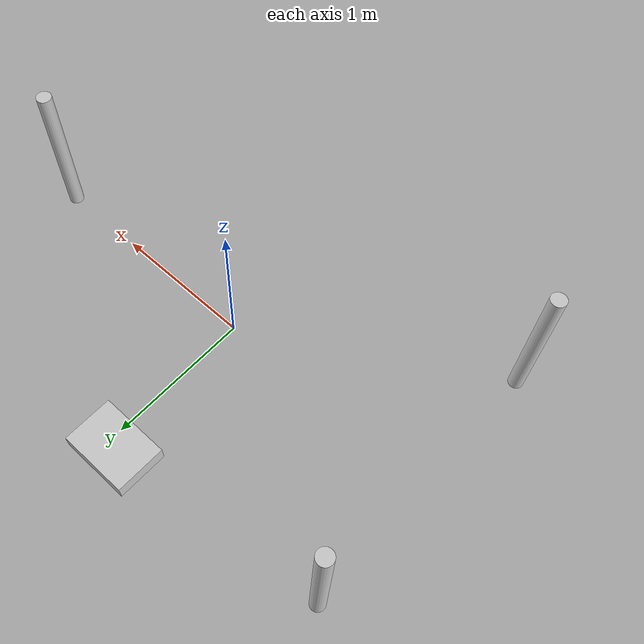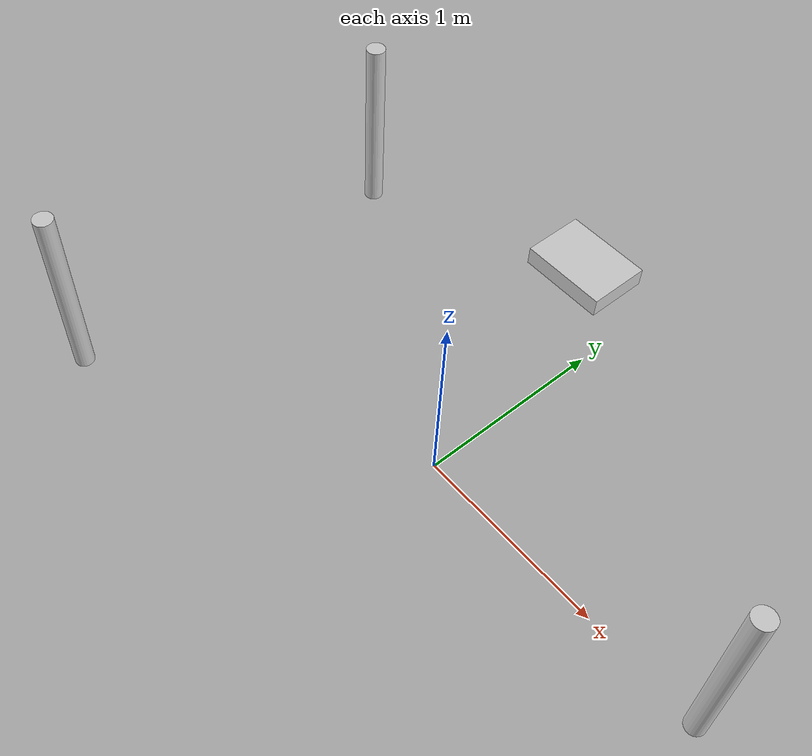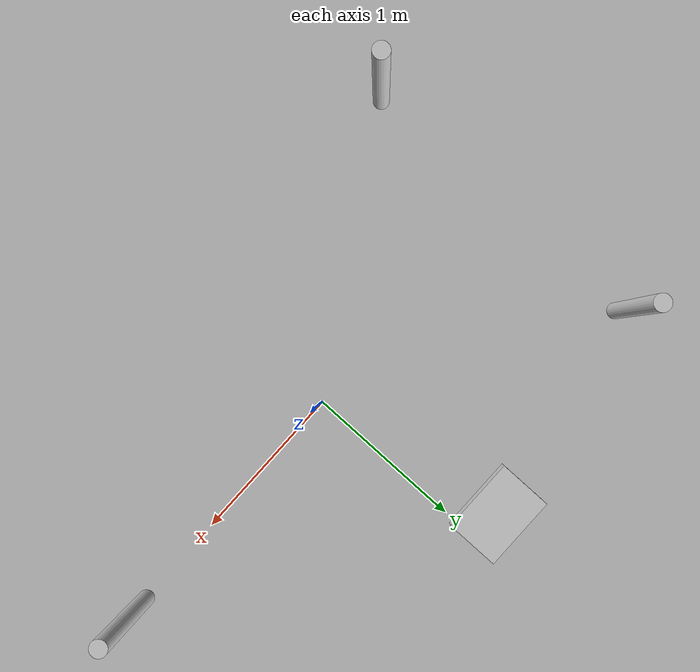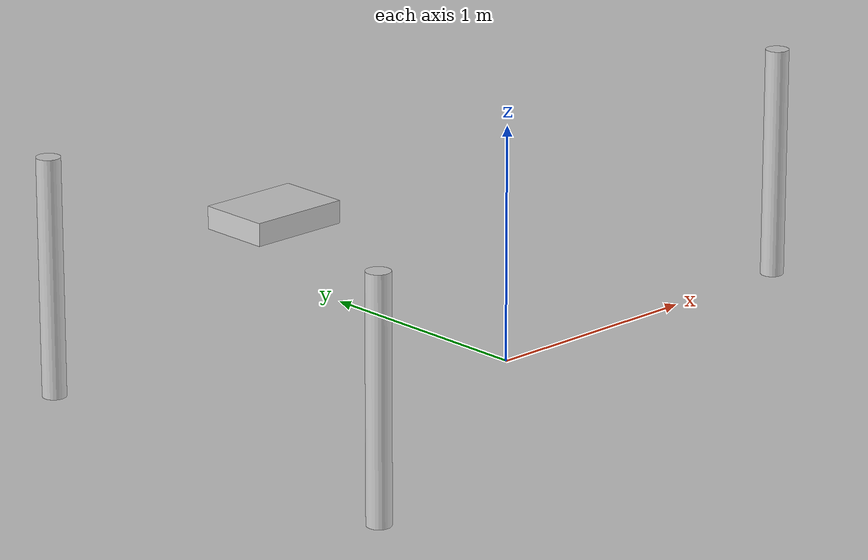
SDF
<sdf version="1.10">
 <world name="default">
  <gravity>0 0 -9.8000000000000007</gravity>
  <magnetic_field>6.0000000000000002e-06 2.3e-05 -4.1999999999999998e-05</magnetic_field>
  <atmosphere type="adiabatic"/>
  <physics type="ode">
   <max_step_size>0.004</max_step_size>
   <real_time_factor>1</real_time_factor>
   <real_time_update_rate>250</real_time_update_rate>
  </physics>
  <scene>
   <ambient>0.400000006 0.400000006 0.400000006 1</ambient>
   <background>0.699999988 0.699999988 0.699999988 1</background>
   <shadows>true</shadows>
  </scene>
  <audio><device>default</device></audio>
  <spherical_coordinates>
   <surface_model>EARTH_WGS84</surface_model>
   <latitude_deg>0</latitude_deg>
   <longitude_deg>0</longitude_deg>
   <elevation>0</elevation>
   <heading_deg>0</heading_deg>
  </spherical_coordinates>
  <plugin name="gz::sim::systems::Physics" filename="gz-sim-physics-system"/>
  <plugin name="gz::sim::systems::Sensors" filename="gz-sim-sensors-system">
   <render_engine>ogre2</render_engine>
  </plugin>
  <plugin name="gz::sim::systems::Imu" filename="gz-sim-imu-system"/>
  <plugin name="gz::sim::systems::UserCommands" filename="gz-sim-user-commands-system"/>
  <plugin name="gz::sim::systems::SceneBroadcaster" filename="gz-sim-scene-broadcaster-system"/>
  <include><uri>model://poteau</uri><name>Poteau1</name><pose>+1.594 0 0 0 0 0</pose></include>
  <include><uri>model://poteau</uri><name>Poteau2</name><pose>-1.594 -0.95 0 0 0 0</pose></include>
  <include><uri>model://poteau</uri><name>Poteau3</name><pose>-1.594 0.95 0 0 0 0</pose></include>
  <include><uri>model://boxboxbox</uri><name>THE_box</name><pose>-0.225 1.161 0 0 0 0</pose></include>
  <light name="sun" type="directional">
   <pose>0 0 10 0 0 0</pose>
   <intensity>1</intensity>
   <direction>-0.5 0.10000000000000001 -0.90000000000000002</direction>
   <diffuse>0.800000012 0.800000012 0.800000012 1</diffuse>
   <specular>0.200000003 0.200000003 0.200000003 1</specular>
   <attenuation>
    <range>1000</range>
    <linear>0.01</linear>
    <constant>0.90000000000000002</constant>
    <quadratic>0.001</quadratic>
   </attenuation>
   <spot><inner_angle>0</inner_angle><outer_angle>0</outer_angle><falloff>0</falloff></spot>
  </light>
 </world>
</sdf>

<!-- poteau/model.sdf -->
<sdf version='1.7'>
  <model name='Poteau'>
   	<static>true</static>
    <allow_auto_disable>true</allow_auto_disable>
    <plugin filename="gz-sim-label-system" name="gz::sim::systems::Label">
        <label>2</label>
    </plugin>
    <link name='link_0'>
			<gravity>0</gravity>
      <inertial>
        <pose>0 0 0.02 0 0 0</pose>
        <mass>0.025</mass>
        <inertia>
          <ixx>2.5e-5</ixx>
          <ixy>0</ixy>
          <ixz>0</ixz>
          <iyy>2.5e-5</iyy>
          <iyz>0</iyz>
          <izz>8e-6</izz>
        </inertia>
      </inertial>
      <pose>0 0 0.5 0 0 0</pose>
      <visual name='visual'>
        <pose>0 0 0 0 -0 0</pose>
        <geometry>
          <cylinder>
            <radius>0.05</radius>
            <length>1.0</length>
          </cylinder>
        </geometry>
        <material>
          <ambient>0.8 0.8 0.8 1</ambient>
          <diffuse>0.8 0.8 0.8 1</diffuse>
          <specular>0.1 0.1 0.1 1</specular>
          <emissive>0 0 0 1</emissive>
        </material>
        <transparency>0</transparency>
        <cast_shadows>1</cast_shadows>
      </visual>

      <collision name='collision'>
        <laser_retro>1</laser_retro>
        <max_contacts>5 </max_contacts>
        <pose>0 0 0.5 0 0 0</pose>
        <geometry>
          <cylinder>
            <radius>0.05</radius>
            <length>1.0</length>
          </cylinder>
        </geometry>
      </collision>
    </link>
    <pose>0 0 0 0 0 0</pose>

    <allow_auto_disable>1</allow_auto_disable>
  </model>
</sdf>

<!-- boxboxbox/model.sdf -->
<sdf version='1.7'>
  <model name='boxboxbox'>
   	<static>true</static>
    <allow_auto_disable>true</allow_auto_disable>
    <plugin filename="gz-sim-label-system" name="gz::sim::systems::Label">
        <label>3</label>
    </plugin>
    <link name='link_0'>
			<gravity>0</gravity>
      <inertial>
        <pose>0 0 0.02 0 0 0</pose>
        <mass>0.025</mass>
        <inertia>
          <ixx>2.5e-5</ixx>
          <ixy>0</ixy>
          <ixz>0</ixz>
          <iyy>2.5e-5</iyy>
          <iyz>0</iyz>
          <izz>8e-6</izz>
        </inertia>
      </inertial>
      <pose>0 0 0.40 0 0 0</pose>
      <visual name='visual'>
        <pose>0 0 0 0 -0 0</pose>
        <geometry>
          <box>
            <size>0.450 0.322 0.100</size>
          </box>
        </geometry>
        <material>
          <ambient>0.8 0.8 0.8 1</ambient>
          <diffuse>0.8 0.8 0.8 1</diffuse>
          <specular>0.1 0.1 0.1 1</specular>
          <emissive>0 0 0 1</emissive>
        </material>
        <transparency>0</transparency>
        <cast_shadows>1</cast_shadows>
      </visual>

      <collision name='collision'>
        <laser_retro>1.0</laser_retro>
        <max_contacts>5 </max_contacts>
        <pose>0 0 0 0 0 0</pose>
        <geometry>
          <box>
            <size>0.450 0.322 0.100</size>
          </box>
        </geometry>
      </collision>
    </link>
    <pose>0 0 0 0 0 0</pose>

    <allow_auto_disable>1</allow_auto_disable>
  </model>
</sdf>
